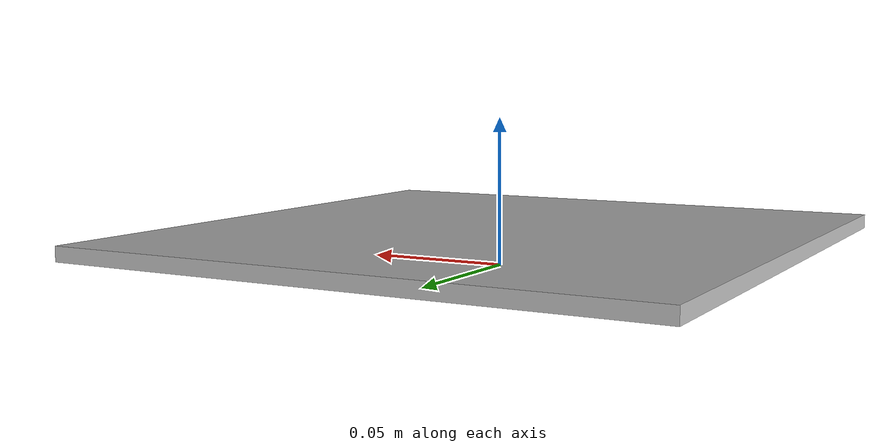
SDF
<?xml version="1.0" ?>
        <sdf version="1.5">
        <model name="DICT_4X4_100_s200_id8">
              <link name="Main">
                <pose>0 0 0 0 0 -1.570796327</pose>
                    <visual name="DICT_4X4_100_s200_id8_Visual">
                        <pose>0 0 0.01 0 0 0</pose>
                        <geometry>
                            <mesh>
                                <scale>1 1 1</scale>
                                <uri>DICT_4X4_100_s200_id8.obj</uri>
                            </mesh>
                        </geometry>
                    </visual>
                    <gravity>1</gravity>
                    <velocity_decay/>
                    <self_collide>0</self_collide>
              </link>
          </model></sdf>
